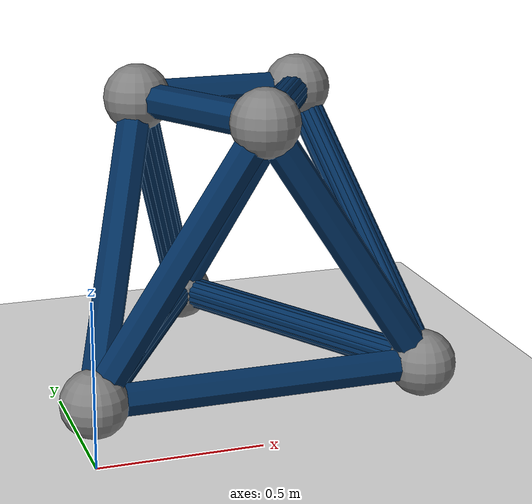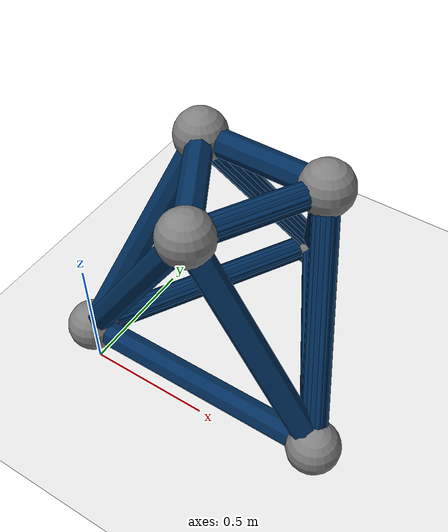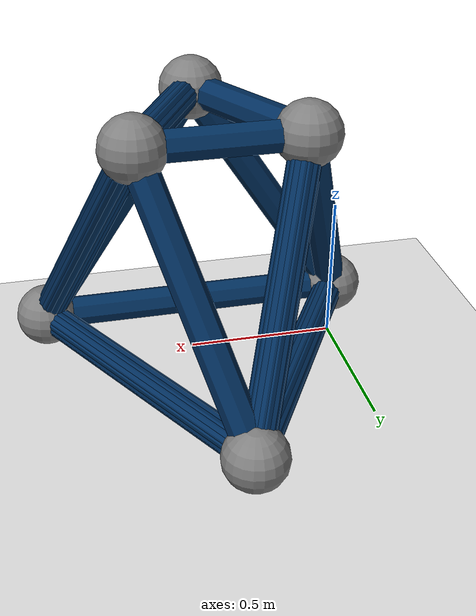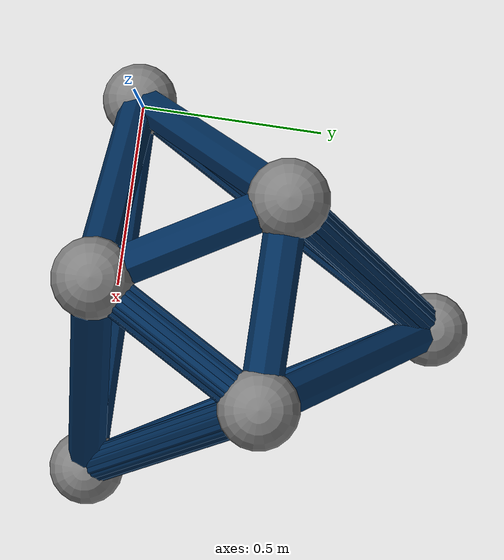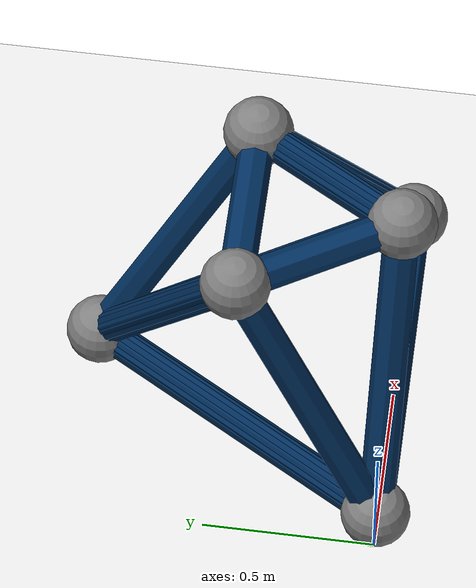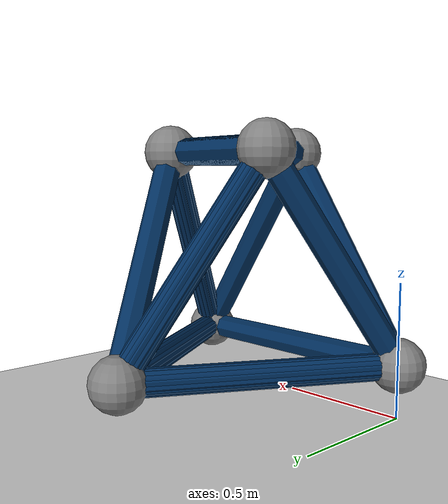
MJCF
<mujoco model="Octahedron">
    <!-- Set Simulator options -->
    <compiler inertiafromgeom="true"/>
    <option timestep="0.001" gravity="0 0 -9.81"/>

    <!-- Define default geometry properties -->
    <default>
    <geom type="sphere" size="0.1"/>
    </default>

    <worldbody>
    <!-- Lighting and ground plane -->
    <light name="key" pos="0 0 2" dir="0 0 -1"/>
    <geom type="plane" name="plane1" size="2 2 0.1" rgba="0.9 0.9 0.9 1"/>

    <body name="Octahedron" pos="0 0 0.1">
    <!-- Nodes -->
    <!-- Triangle 1 -->
    <body name="node_1" pos="0 0 0.1">
      <!-- 3D sliding joints to allow movement in X, Y, Z -->
      <joint name="node_1_x" type="slide" pos="0 0 0" axis="1 0 0"/>
      <joint name="node_1_y" type="slide" pos="0 0 0" axis="0 1 0"/>
      <joint name="node_1_z" type="slide" pos="0 0 0" axis="0 0 1"/>
      <geom/>
      <site name="node_1_site"/>
    </body>

    <body name="node_2" pos="1 0 0.1">
      <joint name="node_2_x" type="slide" pos="0 0 0" axis="1 0 0"/>
      <joint name="node_2_y" type="slide" pos="0 0 0" axis="0 1 0"/>
      <joint name="node_2_z" type="slide" pos="0 0 0" axis="0 0 1"/>
      <geom/>
      <site name="node_2_site"/>
    </body>

    <body name="node_3" pos="0.5 0.866 0.1">
      <joint name="node_3_x" type="slide" pos="0 0 0" axis="1 0 0"/>
      <joint name="node_3_y" type="slide" pos="0 0 0" axis="0 1 0"/>
      <joint name="node_3_z" type="slide" pos="0 0 0" axis="0 0 1"/>
      <geom/>
      <site name="node_3_site"/>
    </body>

    <!-- Triangle 2 -->
    <body name="node_4" pos="0.5 0 0.866">
      <joint name="node_4_x" type="slide" pos="0 0 0" axis="1 0 0"/>
      <joint name="node_4_y" type="slide" pos="0 0 0" axis="0 1 0"/>
      <joint name="node_4_z" type="slide" pos="0 0 0" axis="0 0 1"/>
      <geom/>
      <site name="node_4_site"/>
    </body>

    <body name="node_5" pos="0.25 0.433 0.866">
      <joint name="node_5_x" type="slide" pos="0 0 0" axis="1 0 0"/>
      <joint name="node_5_y" type="slide" pos="0 0 0" axis="0 1 0"/>
      <joint name="node_5_z" type="slide" pos="0 0 0" axis="0 0 1"/>
      <geom/>
      <site name="node_5_site"/>
    </body>

    <body name="node_6" pos="0.75 0.433 0.866">
      <joint name="node_6_x" type="slide" pos="0 0 0" axis="1 0 0"/>
      <joint name="node_6_y" type="slide" pos="0 0 0" axis="0 1 0"/>
      <joint name="node_6_z" type="slide" pos="0 0 0" axis="0 0 1"/>
      <geom/>
      <site name="node_6_site"/>
    </body>
    </body>
    </worldbody>

    <tendon>
        <spatial name="edge_12" width="0.05" rgba="0.0 0.1804 0.3647 1" range="0.8 2">
            <site site="node_1_site"/>
            <site site="node_2_site"/>
        </spatial>
        <spatial name="edge_24" width="0.05" rgba="0.0 0.1804 0.3647 1">
            <site site="node_2_site"/>
            <site site="node_4_site"/>
        </spatial>
        <spatial name="edge_41" width="0.05" rgba="0.0 0.1804 0.3647 1" range="0.8 2">
            <site site="node_4_site"/>
            <site site="node_1_site"/>
        </spatial>
        <spatial name="edge_15" width="0.05" rgba="0.0 0.1804 0.3647 1">
            <site site="node_1_site"/>
            <site site="node_5_site"/>
        </spatial>
        <spatial name="edge_53" width="0.05" rgba="0.0 0.1804 0.3647 1" range="0.8 2">
            <site site="node_5_site"/>
            <site site="node_3_site"/>
        </spatial>
        <spatial name="edge_31" width="0.05" rgba="0.0 0.1804 0.3647 1" range="0.8 2">
            <site site="node_3_site"/>
            <site site="node_1_site"/>
        </spatial>
        <spatial name="edge_36" width="0.05" rgba="0.0 0.1804 0.3647 1">
            <site site="node_3_site"/>
            <site site="node_6_site"/>
        </spatial>
        <spatial name="edge_62" width="0.05" rgba="0.0 0.1804 0.3647 1" range="0.8 2">
            <site site="node_6_site"/>
            <site site="node_2_site"/>
        </spatial>
        <spatial name="edge_23" width="0.05" rgba="0.0 0.1804 0.3647 1" range="0.8 2">
            <site site="node_2_site"/>
            <site site="node_3_site"/>
        </spatial>
        <spatial name="edge_45" width="0.05" rgba="0.0 0.1804 0.3647 1">
            <site site="node_4_site"/>
            <site site="node_5_site"/>
        </spatial>
        <spatial name="edge_56" width="0.05" rgba="0.0 0.1804 0.3647 1" range="0.8 2">
            <site site="node_5_site"/>
            <site site="node_6_site"/>
        </spatial>
        <spatial name="edge_64" width="0.05" rgba="0.0 0.1804 0.3647 1" range="0.8 2">
            <site site="node_6_site"/>
            <site site="node_4_site"/>
        </spatial>

        <!-- active tendon definitions -->
        <spatial name="active_edge_13_35" width="0.05" rgba="0.0 0.1804 0.3647 1">
            <site site="node_1_site"/>
            <site site="node_3_site"/>
            <site site="node_5_site"/>
        </spatial>

        <spatial name="active_edge_21_14" width="0.05" rgba="0.0 0.1804 0.3647 1">
            <site site="node_2_site"/>
            <site site="node_1_site"/>
            <site site="node_4_site"/>
        </spatial>

        <spatial name="active_edge_32_26" width="0.05" rgba="0.0 0.1804 0.3647 1">
            <site site="node_3_site"/>
            <site site="node_2_site"/>
            <site site="node_6_site"/>
        </spatial>

        <spatial name="active_edge_56_64" width="0.05" rgba="0.0 0.1804 0.3647 1">
            <site site="node_4_site"/>
            <site site="node_6_site"/>
            <site site="node_5_site"/>
        </spatial>

    </tendon>

    <actuator>
        <position name="edge_12" tendon="edge_12" kp="750" inheritrange="1.0" dampratio="1.0"/>

        <position name="edge_41" tendon="edge_41" kp="750" inheritrange="1.0" dampratio="1.0"/>

        <position name="edge_53" tendon="edge_53" kp="750" inheritrange="1.0" dampratio="1.0"/>
        <position name="edge_31" tendon="edge_31" kp="750" inheritrange="1.0" dampratio="1.0"/>

        <position name="edge_62" tendon="edge_62" kp="750" inheritrange="1.0" dampratio="1.0"/>
        <position name="edge_23" tendon="edge_23" kp="750" inheritrange="1.0" dampratio="1.0"/>

        <position name="edge_56" tendon="edge_56" kp="750" inheritrange="1.0" dampratio="1.0"/>
        <position name="edge_64" tendon="edge_64" kp="750" inheritrange="1.0" dampratio="1.0"/>
    </actuator>

    <!-- Equality constrains  -->
    <equality>
        <tendon name="active_edge_13_35" tendon1="edge_15" tendon2="active_edge_13_35" polycoef="0 -1 0 0 0" solref="0.02 1" solimp="0.9 0.95 0.001"/>
        <tendon name="active_edge_21_14" tendon1="edge_24" tendon2="active_edge_21_14" polycoef="0 -1 0 0 0" solref="0.02 1" solimp="0.9 0.95 0.001"/>
        <tendon name="active_edge_32_26" tendon1="edge_36" tendon2="active_edge_32_26" polycoef="0 -1 0 0 0" solref="0.02 1" solimp="0.9 0.95 0.001"/>
        <tendon name="active_edge_56_64" tendon1="edge_45" tendon2="active_edge_56_64" polycoef="1.5 -1 0 0 0" solref="0.02 1" solimp="0.9 0.95 0.001"/>
    </equality>

</mujoco>
